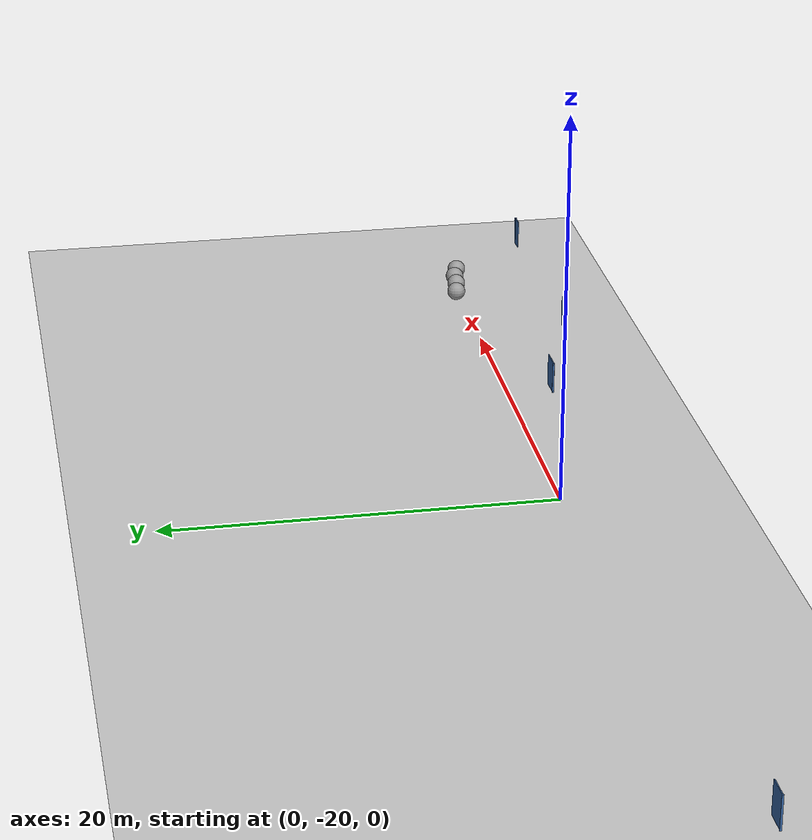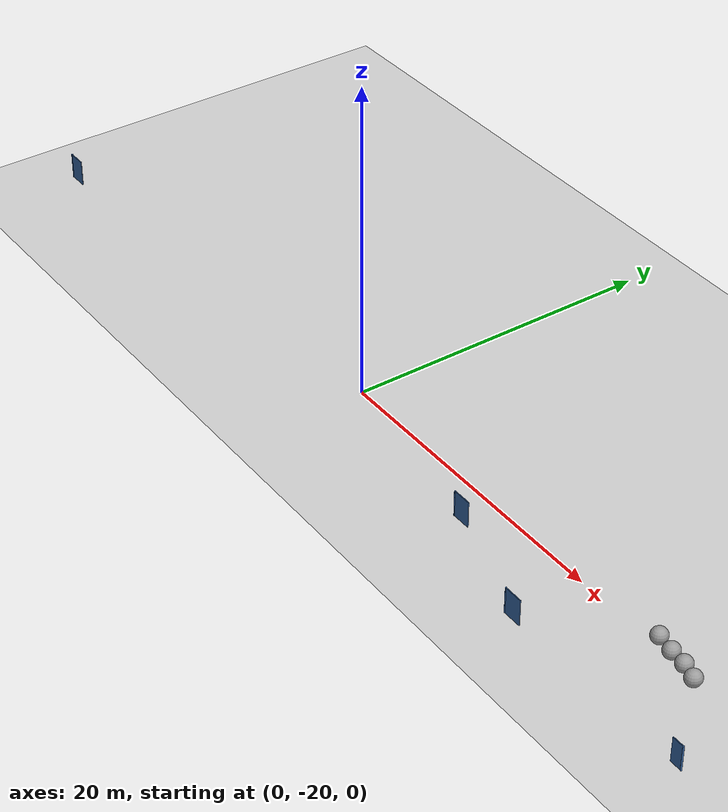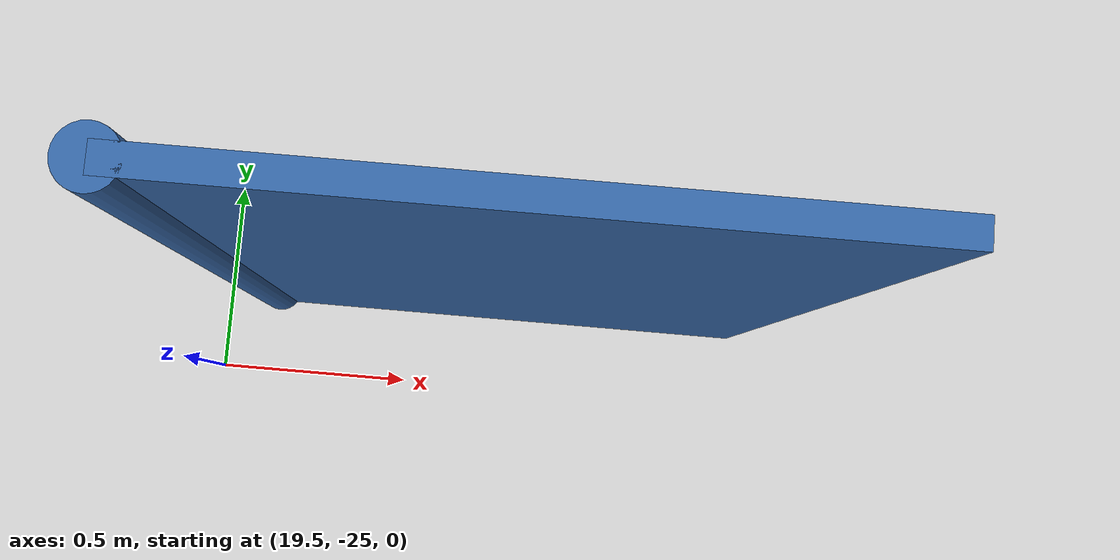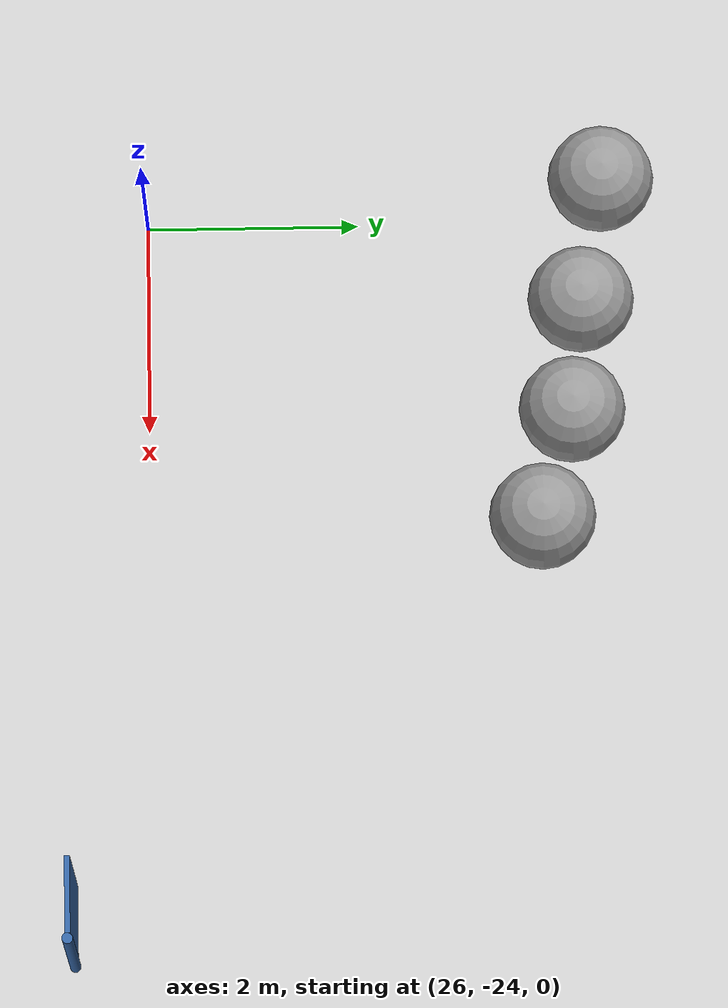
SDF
<sdf version="1.6">
 <world name="default">
  <model name="ground_plane">
   <static>1</static>
   <link name="link">
    <collision name="collision">
     <geometry><plane><normal>0 0 1</normal><size>100 100</size></plane></geometry>
     <surface><friction><ode><mu>100</mu><mu2>50</mu2></ode></friction></surface>
    </collision>
    <visual name="visual">
     <cast_shadows>0</cast_shadows>
     <geometry><plane><normal>0 0 1</normal><size>100 100</size></plane></geometry>
     <material>
      <script><uri>file://media/materials/scripts/gazebo.material</uri><name>Gazebo/Grey</name></script>
     </material>
    </visual>
   </link>
  </model>
  <gravity>0 0 -9.8</gravity>
  <magnetic_field>6e-06 2.3e-05 -4.2e-05</magnetic_field>
  <atmosphere type="adiabatic"/>
  <physics name="default_physics" default="0" type="ode">
   <max_step_size>0.001</max_step_size>
   <real_time_factor>1</real_time_factor>
   <real_time_update_rate>1000</real_time_update_rate>
  </physics>
  <scene><ambient>0.4 0.4 0.4 1</ambient><background>0.7 0.7 0.7 1</background><shadows>1</shadows></scene>
  <spherical_coordinates>
   <surface_model>EARTH_WGS84</surface_model>
   <latitude_deg>0</latitude_deg>
   <longitude_deg>0</longitude_deg>
   <elevation>0</elevation>
   <heading_deg>0</heading_deg>
  </spherical_coordinates>
  <light name="user_directional_light_0" type="directional">
   <pose>2.10605 -31.0888 1 0 -0 0</pose>
   <diffuse>0.5 0.5 0.5 1</diffuse>
   <specular>0.1 0.1 0.1 1</specular>
   <direction>0.1 0.1 -0.9</direction>
   <attenuation>
    <range>20</range>
    <constant>0.5</constant>
    <linear>0.01</linear>
    <quadratic>0.001</quadratic>
   </attenuation>
  </light>
  <model name="hinge_door_1.2_1">
   <link name="link_0">
    <inertial>
     <mass>0.11</mass>
     <inertia>
      <ixx>0.0366896</ixx>
      <ixy>0</ixy>
      <ixz>0</ixz>
      <iyy>0.0477583</iyy>
      <iyz>0</iyz>
      <izz>0.0111146</izz>
     </inertia>
    </inertial>
    <pose>0.25 0 1 0 -0 0</pose>
    <visual name="visual">
     <geometry><box><size>1.2 0.05 1.7</size></box></geometry>
     <material>
      <lighting>1</lighting>
      <script><uri>file://media/materials/scripts/gazebo.material</uri><name>Gazebo/Grey</name></script>
      <shader type="pixel"><normal_map>__default__</normal_map></shader>
      <ambient>0.204 0.396 0.643 1</ambient>
      <diffuse>0.7 0.7 0.7 1</diffuse>
      <specular>0.01 0.01 0.01 1</specular>
      <emissive>0 0 0 1</emissive>
     </material>
    </visual>
    <collision name="collision">
     <geometry><box><size>1.2 0.05 1.7</size></box></geometry>
     <surface>
      <friction>
       <ode><mu>1</mu><mu2>1</mu2><fdir1>0 0 0</fdir1><slip1>0</slip1><slip2>0</slip2></ode>
       <torsional>
        <coefficient>1</coefficient>
        <patch_radius>0</patch_radius>
        <surface_radius>0</surface_radius>
        <use_patch_radius>1</use_patch_radius>
        <ode><slip>0</slip></ode>
       </torsional>
      </friction>
      <bounce><restitution_coefficient>0</restitution_coefficient><threshold>1e+06</threshold></bounce>
      <contact>
       <collide_without_contact>0</collide_without_contact>
       <collide_without_contact_bitmask>1</collide_without_contact_bitmask>
       <collide_bitmask>1</collide_bitmask>
       <ode>
        <soft_cfm>0</soft_cfm>
        <soft_erp>0.2</soft_erp>
        <kp>1e+13</kp>
        <kd>1</kd>
        <max_vel>0.01</max_vel>
        <min_depth>0</min_depth>
       </ode>
       <bullet>
        <split_impulse>1</split_impulse>
        <split_impulse_penetration_threshold>-0.01</split_impulse_penetration_threshold>
        <soft_cfm>0</soft_cfm>
        <soft_erp>0.2</soft_erp>
        <kp>1e+13</kp>
        <kd>1</kd>
       </bullet>
      </contact>
     </surface>
    </collision>
   </link>
   <link name="link_1">
    <inertial>
     <mass>10.9956</mass>
     <inertia>
      <ixx>3.67206</ixx>
      <ixy>0</ixy>
      <ixz>0</ixz>
      <iyy>3.67206</iyy>
      <iyz>0</iyz>
      <izz>0.0137445</izz>
     </inertia>
    </inertial>
    <pose>-0.35 0 1 0 -0 0</pose>
    <visual name="visual">
     <geometry><cylinder><radius>0.05</radius><length>1.7</length></cylinder></geometry>
     <material>
      <lighting>1</lighting>
      <script><uri>file://media/materials/scripts/gazebo.material</uri><name>Gazebo/Grey</name></script>
      <shader type="pixel"><normal_map>__default__</normal_map></shader>
      <ambient>0.204 0.396 0.643 1</ambient>
      <diffuse>0.7 0.7 0.7 1</diffuse>
      <specular>0.01 0.01 0.01 1</specular>
      <emissive>0 0 0 1</emissive>
     </material>
    </visual>
    <collision name="collision">
     <geometry><cylinder><radius>0.05</radius><length>2</length></cylinder></geometry>
     <surface>
      <friction>
       <ode><mu>1</mu><mu2>1</mu2><fdir1>0 0 0</fdir1><slip1>0</slip1><slip2>0</slip2></ode>
       <torsional>
        <coefficient>1</coefficient>
        <patch_radius>0</patch_radius>
        <surface_radius>0</surface_radius>
        <use_patch_radius>1</use_patch_radius>
        <ode><slip>0</slip></ode>
       </torsional>
      </friction>
      <bounce><restitution_coefficient>0</restitution_coefficient><threshold>1e+06</threshold></bounce>
      <contact>
       <collide_without_contact>0</collide_without_contact>
       <collide_without_contact_bitmask>1</collide_without_contact_bitmask>
       <collide_bitmask>1</collide_bitmask>
       <ode>
        <soft_cfm>0</soft_cfm>
        <soft_erp>0.2</soft_erp>
        <kp>1e+13</kp>
        <kd>1</kd>
        <max_vel>0.01</max_vel>
        <min_depth>0</min_depth>
       </ode>
       <bullet>
        <split_impulse>1</split_impulse>
        <split_impulse_penetration_threshold>-0.01</split_impulse_penetration_threshold>
        <soft_cfm>0</soft_cfm>
        <soft_erp>0.2</soft_erp>
        <kp>1e+13</kp>
        <kd>1</kd>
       </bullet>
      </contact>
     </surface>
    </collision>
   </link>
   <joint name="hinge" type="revolute">
    <parent>link_1</parent>
    <child>link_0</child>
    <pose>-0.6 0 0 0 -0 0</pose>
    <axis>
     <xyz>0 0 1</xyz>
     <use_parent_model_frame>0</use_parent_model_frame>
     <limit>
      <lower>-1.79769e+308</lower>
      <upper>1.79769e+308</upper>
      <effort>-1</effort>
      <velocity>-1</velocity>
     </limit>
     <dynamics>
      <spring_reference>0</spring_reference>
      <spring_stiffness>0</spring_stiffness>
      <damping>0</damping>
      <friction>0</friction>
     </dynamics>
    </axis>
    <physics>
     <ode><limit><cfm>0</cfm><erp>0.2</erp></limit><suspension><cfm>0</cfm><erp>0.2</erp></suspension></ode>
    </physics>
   </joint>
   <joint name="floor_link" type="fixed">
    <child>link_1</child>
    <parent>world</parent>
    <axis>
     <xyz>0 0 1</xyz>
     <dynamics><spring_reference>0</spring_reference><spring_stiffness>0</spring_stiffness></dynamics>
     <use_parent_model_frame>0</use_parent_model_frame>
     <limit><lower>-1e+16</lower><upper>1e+16</upper></limit>
    </axis>
   </joint>
   <pose>20.0112 -24.7934 -0 0 -0 0</pose>
  </model>
  <model name="hinge_door_1.2_0">
   <link name="link_0">
    <inertial>
     <mass>0.11</mass>
     <inertia>
      <ixx>0.0366896</ixx>
      <ixy>0</ixy>
      <ixz>0</ixz>
      <iyy>0.0477583</iyy>
      <iyz>0</iyz>
      <izz>0.0111146</izz>
     </inertia>
    </inertial>
    <pose>0.25 0 1 0 -0 0</pose>
    <visual name="visual">
     <geometry><box><size>1.2 0.05 1.7</size></box></geometry>
     <material>
      <lighting>1</lighting>
      <script><uri>file://media/materials/scripts/gazebo.material</uri><name>Gazebo/Grey</name></script>
      <shader type="pixel"><normal_map>__default__</normal_map></shader>
      <ambient>0.204 0.396 0.643 1</ambient>
      <diffuse>0.7 0.7 0.7 1</diffuse>
      <specular>0.01 0.01 0.01 1</specular>
      <emissive>0 0 0 1</emissive>
     </material>
    </visual>
    <collision name="collision">
     <geometry><box><size>1.2 0.05 1.7</size></box></geometry>
     <surface>
      <friction>
       <ode><mu>1</mu><mu2>1</mu2><fdir1>0 0 0</fdir1><slip1>0</slip1><slip2>0</slip2></ode>
       <torsional>
        <coefficient>1</coefficient>
        <patch_radius>0</patch_radius>
        <surface_radius>0</surface_radius>
        <use_patch_radius>1</use_patch_radius>
        <ode><slip>0</slip></ode>
       </torsional>
      </friction>
      <bounce><restitution_coefficient>0</restitution_coefficient><threshold>1e+06</threshold></bounce>
      <contact>
       <collide_without_contact>0</collide_without_contact>
       <collide_without_contact_bitmask>1</collide_without_contact_bitmask>
       <collide_bitmask>1</collide_bitmask>
       <ode>
        <soft_cfm>0</soft_cfm>
        <soft_erp>0.2</soft_erp>
        <kp>1e+13</kp>
        <kd>1</kd>
        <max_vel>0.01</max_vel>
        <min_depth>0</min_depth>
       </ode>
       <bullet>
        <split_impulse>1</split_impulse>
        <split_impulse_penetration_threshold>-0.01</split_impulse_penetration_threshold>
        <soft_cfm>0</soft_cfm>
        <soft_erp>0.2</soft_erp>
        <kp>1e+13</kp>
        <kd>1</kd>
       </bullet>
      </contact>
     </surface>
    </collision>
   </link>
   <link name="link_1">
    <inertial>
     <mass>10.9956</mass>
     <inertia>
      <ixx>3.67206</ixx>
      <ixy>0</ixy>
      <ixz>0</ixz>
      <iyy>3.67206</iyy>
      <iyz>0</iyz>
      <izz>0.0137445</izz>
     </inertia>
    </inertial>
    <pose>-0.35 0 1 0 -0 0</pose>
    <visual name="visual">
     <geometry><cylinder><radius>0.05</radius><length>1.7</length></cylinder></geometry>
     <material>
      <lighting>1</lighting>
      <script><uri>file://media/materials/scripts/gazebo.material</uri><name>Gazebo/Grey</name></script>
      <shader type="pixel"><normal_map>__default__</normal_map></shader>
      <ambient>0.204 0.396 0.643 1</ambient>
      <diffuse>0.7 0.7 0.7 1</diffuse>
      <specular>0.01 0.01 0.01 1</specular>
      <emissive>0 0 0 1</emissive>
     </material>
    </visual>
    <collision name="collision">
     <geometry><cylinder><radius>0.05</radius><length>2</length></cylinder></geometry>
     <surface>
      <friction>
       <ode><mu>1</mu><mu2>1</mu2><fdir1>0 0 0</fdir1><slip1>0</slip1><slip2>0</slip2></ode>
       <torsional>
        <coefficient>1</coefficient>
        <patch_radius>0</patch_radius>
        <surface_radius>0</surface_radius>
        <use_patch_radius>1</use_patch_radius>
        <ode><slip>0</slip></ode>
       </torsional>
      </friction>
      <bounce><restitution_coefficient>0</restitution_coefficient><threshold>1e+06</threshold></bounce>
      <contact>
       <collide_without_contact>0</collide_without_contact>
       <collide_without_contact_bitmask>1</collide_without_contact_bitmask>
       <collide_bitmask>1</collide_bitmask>
       <ode>
        <soft_cfm>0</soft_cfm>
        <soft_erp>0.2</soft_erp>
        <kp>1e+13</kp>
        <kd>1</kd>
        <max_vel>0.01</max_vel>
        <min_depth>0</min_depth>
       </ode>
       <bullet>
        <split_impulse>1</split_impulse>
        <split_impulse_penetration_threshold>-0.01</split_impulse_penetration_threshold>
        <soft_cfm>0</soft_cfm>
        <soft_erp>0.2</soft_erp>
        <kp>1e+13</kp>
        <kd>1</kd>
       </bullet>
      </contact>
     </surface>
    </collision>
   </link>
   <joint name="hinge" type="revolute">
    <parent>link_1</parent>
    <child>link_0</child>
    <pose>-0.6 0 0 0 -0 0</pose>
    <axis>
     <xyz>0 0 1</xyz>
     <use_parent_model_frame>0</use_parent_model_frame>
     <limit>
      <lower>-1.79769e+308</lower>
      <upper>1.79769e+308</upper>
      <effort>-1</effort>
      <velocity>-1</velocity>
     </limit>
     <dynamics>
      <spring_reference>0</spring_reference>
      <spring_stiffness>0</spring_stiffness>
      <damping>0</damping>
      <friction>0</friction>
     </dynamics>
    </axis>
    <physics>
     <ode><limit><cfm>0</cfm><erp>0.2</erp></limit><suspension><cfm>0</cfm><erp>0.2</erp></suspension></ode>
    </physics>
   </joint>
   <joint name="floor_link" type="fixed">
    <child>link_1</child>
    <parent>world</parent>
    <axis>
     <xyz>0 0 1</xyz>
     <dynamics><spring_reference>0</spring_reference><spring_stiffness>0</spring_stiffness></dynamics>
     <use_parent_model_frame>0</use_parent_model_frame>
     <limit><lower>-1e+16</lower><upper>1e+16</upper></limit>
    </axis>
   </joint>
   <pose>-29.7867 -22.1835 -0 0 -0 0</pose>
  </model>
  <model name="hinge_door_1.2">
   <link name="link_0">
    <inertial>
     <mass>0.11</mass>
     <inertia>
      <ixx>0.0366896</ixx>
      <ixy>0</ixy>
      <ixz>0</ixz>
      <iyy>0.0477583</iyy>
      <iyz>0</iyz>
      <izz>0.0111146</izz>
     </inertia>
    </inertial>
    <pose>0.25 0 1 0 -0 0</pose>
    <visual name="visual">
     <geometry><box><size>1.2 0.05 1.7</size></box></geometry>
     <material>
      <lighting>1</lighting>
      <script><uri>file://media/materials/scripts/gazebo.material</uri><name>Gazebo/Grey</name></script>
      <shader type="pixel"><normal_map>__default__</normal_map></shader>
      <ambient>0.204 0.396 0.643 1</ambient>
      <diffuse>0.7 0.7 0.7 1</diffuse>
      <specular>0.01 0.01 0.01 1</specular>
      <emissive>0 0 0 1</emissive>
     </material>
    </visual>
    <collision name="collision">
     <geometry><box><size>1.2 0.05 1.7</size></box></geometry>
     <surface>
      <friction>
       <ode><mu>1</mu><mu2>1</mu2><fdir1>0 0 0</fdir1><slip1>0</slip1><slip2>0</slip2></ode>
       <torsional>
        <coefficient>1</coefficient>
        <patch_radius>0</patch_radius>
        <surface_radius>0</surface_radius>
        <use_patch_radius>1</use_patch_radius>
        <ode><slip>0</slip></ode>
       </torsional>
      </friction>
      <bounce><restitution_coefficient>0</restitution_coefficient><threshold>1e+06</threshold></bounce>
      <contact>
       <collide_without_contact>0</collide_without_contact>
       <collide_without_contact_bitmask>1</collide_without_contact_bitmask>
       <collide_bitmask>1</collide_bitmask>
       <ode>
        <soft_cfm>0</soft_cfm>
        <soft_erp>0.2</soft_erp>
        <kp>1e+13</kp>
        <kd>1</kd>
        <max_vel>0.01</max_vel>
        <min_depth>0</min_depth>
       </ode>
       <bullet>
        <split_impulse>1</split_impulse>
        <split_impulse_penetration_threshold>-0.01</split_impulse_penetration_threshold>
        <soft_cfm>0</soft_cfm>
        <soft_erp>0.2</soft_erp>
        <kp>1e+13</kp>
        <kd>1</kd>
       </bullet>
      </contact>
     </surface>
    </collision>
   </link>
   <link name="link_1">
    <inertial>
     <mass>10.9956</mass>
     <inertia>
      <ixx>3.67206</ixx>
      <ixy>0</ixy>
      <ixz>0</ixz>
      <iyy>3.67206</iyy>
      <iyz>0</iyz>
      <izz>0.0137445</izz>
     </inertia>
    </inertial>
    <pose>-0.35 0 1 0 -0 0</pose>
    <visual name="visual">
     <geometry><cylinder><radius>0.05</radius><length>1.7</length></cylinder></geometry>
     <material>
      <lighting>1</lighting>
      <script><uri>file://media/materials/scripts/gazebo.material</uri><name>Gazebo/Grey</name></script>
      <shader type="pixel"><normal_map>__default__</normal_map></shader>
      <ambient>0.204 0.396 0.643 1</ambient>
      <diffuse>0.7 0.7 0.7 1</diffuse>
      <specular>0.01 0.01 0.01 1</specular>
      <emissive>0 0 0 1</emissive>
     </material>
    </visual>
    <collision name="collision">
     <geometry><cylinder><radius>0.05</radius><length>2</length></cylinder></geometry>
     <surface>
      <friction>
       <ode><mu>1</mu><mu2>1</mu2><fdir1>0 0 0</fdir1><slip1>0</slip1><slip2>0</slip2></ode>
       <torsional>
        <coefficient>1</coefficient>
        <patch_radius>0</patch_radius>
        <surface_radius>0</surface_radius>
        <use_patch_radius>1</use_patch_radius>
        <ode><slip>0</slip></ode>
       </torsional>
      </friction>
      <bounce><restitution_coefficient>0</restitution_coefficient><threshold>1e+06</threshold></bounce>
      <contact>
       <collide_without_contact>0</collide_without_contact>
       <collide_without_contact_bitmask>1</collide_without_contact_bitmask>
       <collide_bitmask>1</collide_bitmask>
       <ode>
        <soft_cfm>0</soft_cfm>
        <soft_erp>0.2</soft_erp>
        <kp>1e+13</kp>
        <kd>1</kd>
        <max_vel>0.01</max_vel>
        <min_depth>0</min_depth>
       </ode>
       <bullet>
        <split_impulse>1</split_impulse>
        <split_impulse_penetration_threshold>-0.01</split_impulse_penetration_threshold>
        <soft_cfm>0</soft_cfm>
        <soft_erp>0.2</soft_erp>
        <kp>1e+13</kp>
        <kd>1</kd>
       </bullet>
      </contact>
     </surface>
    </collision>
   </link>
   <joint name="hinge" type="revolute">
    <parent>link_1</parent>
    <child>link_0</child>
    <pose>-0.6 0 0 0 -0 0</pose>
    <axis>
     <xyz>0 0 1</xyz>
     <use_parent_model_frame>0</use_parent_model_frame>
     <limit>
      <lower>-1.79769e+308</lower>
      <upper>1.79769e+308</upper>
      <effort>-1</effort>
      <velocity>-1</velocity>
     </limit>
     <dynamics>
      <spring_reference>0</spring_reference>
      <spring_stiffness>0</spring_stiffness>
      <damping>0</damping>
      <friction>0</friction>
     </dynamics>
    </axis>
    <physics>
     <ode><limit><cfm>0</cfm><erp>0.2</erp></limit><suspension><cfm>0</cfm><erp>0.2</erp></suspension></ode>
    </physics>
   </joint>
   <joint name="floor_link" type="fixed">
    <child>link_1</child>
    <parent>world</parent>
    <axis>
     <xyz>0 0 1</xyz>
     <dynamics><spring_reference>0</spring_reference><spring_stiffness>0</spring_stiffness></dynamics>
     <use_parent_model_frame>0</use_parent_model_frame>
     <limit><lower>-1e+16</lower><upper>1e+16</upper></limit>
    </axis>
   </joint>
   <pose>12.3692 -22.3106 -0 0 -0 0</pose>
  </model>
  <model name="hinge_door_0.7">
   <link name="link_0">
    <inertial>
     <mass>0.11</mass>
     <inertia>
      <ixx>0.0366896</ixx>
      <ixy>0</ixy>
      <ixz>0</ixz>
      <iyy>0.0477583</iyy>
      <iyz>0</iyz>
      <izz>0.0111146</izz>
     </inertia>
    </inertial>
    <pose>0.05 0 1 0 -0 0</pose>
    <visual name="visual">
     <geometry><box><size>0.7 0.05 1.6</size></box></geometry>
     <material>
      <lighting>1</lighting>
      <script><uri>file://media/materials/scripts/gazebo.material</uri><name>Gazebo/Grey</name></script>
      <shader type="pixel"><normal_map>__default__</normal_map></shader>
      <ambient>0.204 0.396 0.643 1</ambient>
      <diffuse>0.7 0.7 0.7 1</diffuse>
      <specular>0.01 0.01 0.01 1</specular>
      <emissive>0 0 0 1</emissive>
     </material>
    </visual>
    <collision name="collision">
     <geometry><box><size>0.7 0.05 1.6</size></box></geometry>
     <surface>
      <friction>
       <ode><mu>1</mu><mu2>1</mu2><fdir1>0 0 0</fdir1><slip1>0</slip1><slip2>0</slip2></ode>
       <torsional>
        <coefficient>1</coefficient>
        <patch_radius>0</patch_radius>
        <surface_radius>0</surface_radius>
        <use_patch_radius>1</use_patch_radius>
        <ode><slip>0</slip></ode>
       </torsional>
      </friction>
      <bounce><restitution_coefficient>0</restitution_coefficient><threshold>1e+06</threshold></bounce>
      <contact>
       <collide_without_contact>0</collide_without_contact>
       <collide_without_contact_bitmask>1</collide_without_contact_bitmask>
       <collide_bitmask>1</collide_bitmask>
       <ode>
        <soft_cfm>0</soft_cfm>
        <soft_erp>0.2</soft_erp>
        <kp>1e+13</kp>
        <kd>1</kd>
        <max_vel>0.01</max_vel>
        <min_depth>0</min_depth>
       </ode>
       <bullet>
        <split_impulse>1</split_impulse>
        <split_impulse_penetration_threshold>-0.01</split_impulse_penetration_threshold>
        <soft_cfm>0</soft_cfm>
        <soft_erp>0.2</soft_erp>
        <kp>1e+13</kp>
        <kd>1</kd>
       </bullet>
      </contact>
     </surface>
    </collision>
   </link>
   <link name="link_1">
    <inertial>
     <mass>10.9956</mass>
     <inertia>
      <ixx>3.67206</ixx>
      <ixy>0</ixy>
      <ixz>0</ixz>
      <iyy>3.67206</iyy>
      <iyz>0</iyz>
      <izz>0.0137445</izz>
     </inertia>
    </inertial>
    <pose>0.45 0 1 0 -0 0</pose>
    <visual name="visual">
     <geometry><cylinder><radius>0.05</radius><length>1.6</length></cylinder></geometry>
     <material>
      <lighting>1</lighting>
      <script><uri>file://media/materials/scripts/gazebo.material</uri><name>Gazebo/Grey</name></script>
      <shader type="pixel"><normal_map>__default__</normal_map></shader>
      <ambient>0.204 0.396 0.643 1</ambient>
      <diffuse>0.7 0.7 0.7 1</diffuse>
      <specular>0.01 0.01 0.01 1</specular>
      <emissive>0 0 0 1</emissive>
     </material>
    </visual>
    <collision name="collision">
     <geometry><cylinder><radius>0.05</radius><length>2</length></cylinder></geometry>
     <surface>
      <friction>
       <ode><mu>1</mu><mu2>1</mu2><fdir1>0 0 0</fdir1><slip1>0</slip1><slip2>0</slip2></ode>
       <torsional>
        <coefficient>1</coefficient>
        <patch_radius>0</patch_radius>
        <surface_radius>0</surface_radius>
        <use_patch_radius>1</use_patch_radius>
        <ode><slip>0</slip></ode>
       </torsional>
      </friction>
      <bounce><restitution_coefficient>0</restitution_coefficient><threshold>1e+06</threshold></bounce>
      <contact>
       <collide_without_contact>0</collide_without_contact>
       <collide_without_contact_bitmask>1</collide_without_contact_bitmask>
       <collide_bitmask>1</collide_bitmask>
       <ode>
        <soft_cfm>0</soft_cfm>
        <soft_erp>0.2</soft_erp>
        <kp>1e+13</kp>
        <kd>1</kd>
        <max_vel>0.01</max_vel>
        <min_depth>0</min_depth>
       </ode>
       <bullet>
        <split_impulse>1</split_impulse>
        <split_impulse_penetration_threshold>-0.01</split_impulse_penetration_threshold>
        <soft_cfm>0</soft_cfm>
        <soft_erp>0.2</soft_erp>
        <kp>1e+13</kp>
        <kd>1</kd>
       </bullet>
      </contact>
     </surface>
    </collision>
   </link>
   <joint name="hinge" type="revolute">
    <parent>link_1</parent>
    <child>link_0</child>
    <pose>0.4 0 0 0 -0 0</pose>
    <axis>
     <xyz>0 0 1</xyz>
     <use_parent_model_frame>0</use_parent_model_frame>
     <limit>
      <lower>-1.79769e+308</lower>
      <upper>1.79769e+308</upper>
      <effort>-1</effort>
      <velocity>-1</velocity>
     </limit>
     <dynamics>
      <spring_reference>0</spring_reference>
      <spring_stiffness>0</spring_stiffness>
      <damping>0</damping>
      <friction>0</friction>
     </dynamics>
    </axis>
    <physics>
     <ode><limit><cfm>0</cfm><erp>0.2</erp></limit><suspension><cfm>0</cfm><erp>0.2</erp></suspension></ode>
    </physics>
   </joint>
   <joint name="floor_link" type="fixed">
    <child>link_1</child>
    <parent>world</parent>
    <axis>
     <xyz>0 0 1</xyz>
     <dynamics><spring_reference>0</spring_reference><spring_stiffness>0</spring_stiffness></dynamics>
     <use_parent_model_frame>0</use_parent_model_frame>
     <limit><lower>-1e+16</lower><upper>1e+16</upper></limit>
    </axis>
   </joint>
   <pose>32.6803 -24.7227 -0 0 -0 0</pose>
  </model>
  <model name="unit_sphere">
   <pose>27.9635 -20.024 0.5 0 -0 0</pose>
   <link name="link">
    <inertial>
     <mass>1</mass>
     <inertia><ixx>0.1</ixx><ixy>0</ixy><ixz>0</ixz><iyy>0.1</iyy><iyz>0</iyz><izz>0.1</izz></inertia>
    </inertial>
    <collision name="collision"><geometry><sphere><radius>0.5</radius></sphere></geometry></collision>
    <visual name="visual">
     <geometry><sphere><radius>0.5</radius></sphere></geometry>
     <material>
      <script><name>Gazebo/Grey</name><uri>file://media/materials/scripts/gazebo.material</uri></script>
     </material>
    </visual>
   </link>
  </model>
  <model name="unit_sphere_0">
   <pose>26.8926 -19.9164 0.5 0 -0 0</pose>
   <link name="link">
    <inertial>
     <mass>1</mass>
     <inertia><ixx>0.1</ixx><ixy>0</ixy><ixz>0</ixz><iyy>0.1</iyy><iyz>0</iyz><izz>0.1</izz></inertia>
    </inertial>
    <collision name="collision"><geometry><sphere><radius>0.5</radius></sphere></geometry></collision>
    <visual name="visual">
     <geometry><sphere><radius>0.5</radius></sphere></geometry>
     <material>
      <script><name>Gazebo/Grey</name><uri>file://media/materials/scripts/gazebo.material</uri></script>
     </material>
    </visual>
   </link>
  </model>
  <model name="unit_sphere_1">
   <pose>25.7114 -19.6994 0.5 0 -0 0</pose>
   <link name="link">
    <inertial>
     <mass>1</mass>
     <inertia><ixx>0.1</ixx><ixy>0</ixy><ixz>0</ixz><iyy>0.1</iyy><iyz>0</iyz><izz>0.1</izz></inertia>
    </inertial>
    <collision name="collision"><geometry><sphere><radius>0.5</radius></sphere></geometry></collision>
    <visual name="visual">
     <geometry><sphere><radius>0.5</radius></sphere></geometry>
     <material>
      <script><name>Gazebo/Grey</name><uri>file://media/materials/scripts/gazebo.material</uri></script>
     </material>
    </visual>
   </link>
  </model>
  <model name="unit_sphere_2">
   <pose>28.9926 -20.3254 0.5 0 -0 0</pose>
   <link name="link">
    <inertial>
     <mass>1</mass>
     <inertia><ixx>0.1</ixx><ixy>0</ixy><ixz>0</ixz><iyy>0.1</iyy><iyz>0</iyz><izz>0.1</izz></inertia>
    </inertial>
    <collision name="collision"><geometry><sphere><radius>0.5</radius></sphere></geometry></collision>
    <visual name="visual">
     <geometry><sphere><radius>0.5</radius></sphere></geometry>
     <material>
      <script><name>Gazebo/Grey</name><uri>file://media/materials/scripts/gazebo.material</uri></script>
     </material>
    </visual>
   </link>
  </model>
 </world>
</sdf>
